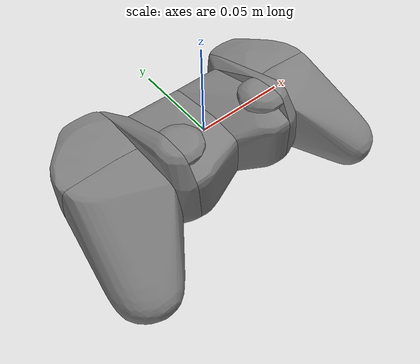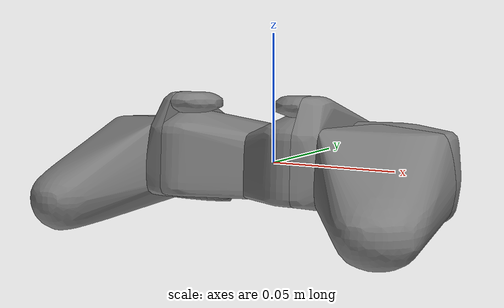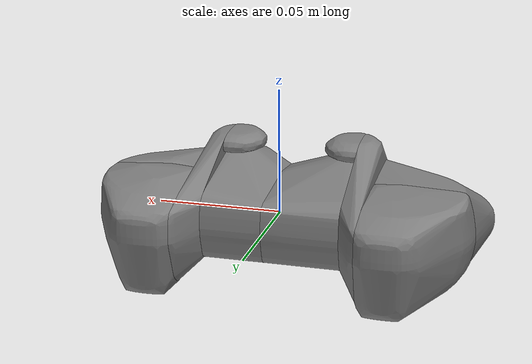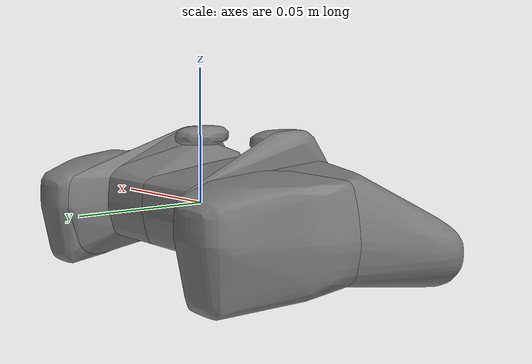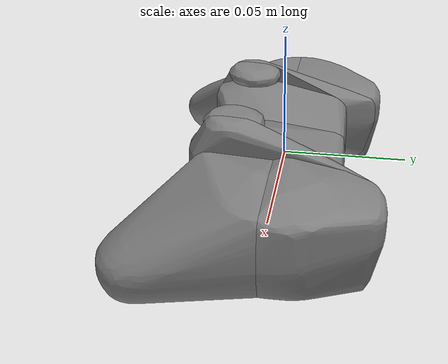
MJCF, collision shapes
<mujoco model="ps_controller">
  <compiler meshdir="."/>

  <asset>
    <mesh name="ps_controller" file="ps_controller.stl"/>
    <mesh name="ps_controller_collision_hull_000" file="ps_controller_collision_hull_000.stl"/>
    <mesh name="ps_controller_collision_hull_001" file="ps_controller_collision_hull_001.stl"/>
    <mesh name="ps_controller_collision_hull_002" file="ps_controller_collision_hull_002.stl"/>
    <mesh name="ps_controller_collision_hull_003" file="ps_controller_collision_hull_003.stl"/>
    <mesh name="ps_controller_collision_hull_004" file="ps_controller_collision_hull_004.stl"/>
    <mesh name="ps_controller_collision_hull_005" file="ps_controller_collision_hull_005.stl"/>
    <mesh name="ps_controller_collision_hull_006" file="ps_controller_collision_hull_006.stl"/>
    <mesh name="ps_controller_collision_hull_007" file="ps_controller_collision_hull_007.stl"/>
    <mesh name="ps_controller_collision_hull_008" file="ps_controller_collision_hull_008.stl"/>
    <mesh name="ps_controller_collision_hull_009" file="ps_controller_collision_hull_009.stl"/>
  </asset>

  <worldbody>
    <body name="object">
      <freejoint name="object_joint"/>
      <geom name="object_visual" type="mesh" mesh="ps_controller"
            contype="0" conaffinity="0" group="2" rgba="0.9 0.9 0.8 1" mass="0"/>
      <geom name="ps_controller_collision_hull_000_collision" type="mesh" mesh="ps_controller_collision_hull_000"
            mass="0.0050" condim="6" friction="1.0 0.002 0.002" priority="1"/>
      <geom name="ps_controller_collision_hull_001_collision" type="mesh" mesh="ps_controller_collision_hull_001"
            mass="0.0050" condim="6" friction="1.0 0.002 0.002" priority="1"/>
      <geom name="ps_controller_collision_hull_002_collision" type="mesh" mesh="ps_controller_collision_hull_002"
            mass="0.0050" condim="6" friction="1.0 0.002 0.002" priority="1"/>
      <geom name="ps_controller_collision_hull_003_collision" type="mesh" mesh="ps_controller_collision_hull_003"
            mass="0.0050" condim="6" friction="1.0 0.002 0.002" priority="1"/>
      <geom name="ps_controller_collision_hull_004_collision" type="mesh" mesh="ps_controller_collision_hull_004"
            mass="0.0050" condim="6" friction="1.0 0.002 0.002" priority="1"/>
      <geom name="ps_controller_collision_hull_005_collision" type="mesh" mesh="ps_controller_collision_hull_005"
            mass="0.0050" condim="6" friction="1.0 0.002 0.002" priority="1"/>
      <geom name="ps_controller_collision_hull_006_collision" type="mesh" mesh="ps_controller_collision_hull_006"
            mass="0.0050" condim="6" friction="1.0 0.002 0.002" priority="1"/>
      <geom name="ps_controller_collision_hull_007_collision" type="mesh" mesh="ps_controller_collision_hull_007"
            mass="0.0050" condim="6" friction="1.0 0.002 0.002" priority="1"/>
      <geom name="ps_controller_collision_hull_008_collision" type="mesh" mesh="ps_controller_collision_hull_008"
            mass="0.0050" condim="6" friction="1.0 0.002 0.002" priority="1"/>
      <geom name="ps_controller_collision_hull_009_collision" type="mesh" mesh="ps_controller_collision_hull_009"
            mass="0.0050" condim="6" friction="1.0 0.002 0.002" priority="1"/>
    </body>
  </worldbody>
</mujoco>
